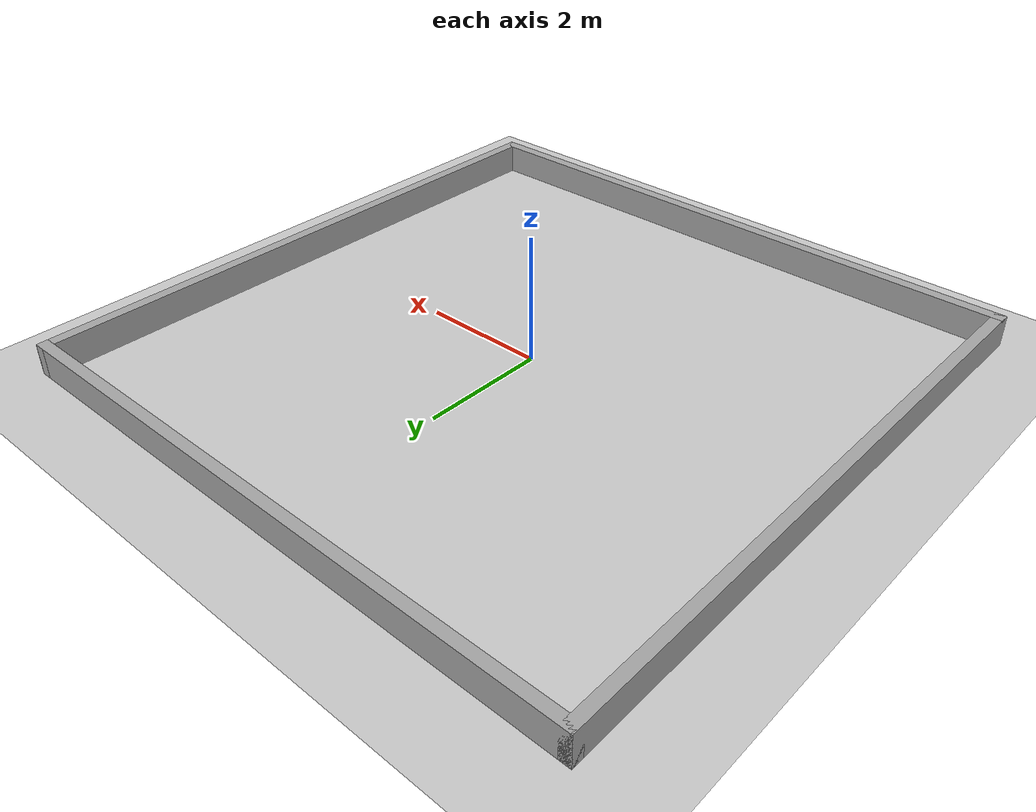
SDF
<?xml version='1.0'?>
<sdf version='1.7'>
  <world name='open_area'>
    <physics name='1ms' type='ignored'>
      <max_step_size>0.001</max_step_size>
      <real_time_factor>1.0</real_time_factor>
    </physics>
    <plugin filename='gz-sim-physics-system' name='gz::sim::systems::Physics'/>
    <plugin filename='gz-sim-user-commands-system' name='gz::sim::systems::UserCommands'/>
    <plugin filename='gz-sim-scene-broadcaster-system' name='gz::sim::systems::SceneBroadcaster'/>
    <light type='directional' name='sun'>
      <cast_shadows>true</cast_shadows>
      <pose>0 0 10 0 0 0</pose>
      <diffuse>0.8 0.8 0.8 1</diffuse>
      <specular>0.2 0.2 0.2 1</specular>
      <direction>-0.5 0.1 -0.9</direction>
    </light>
    <model name='ground_plane'>
      <static>true</static>
      <link name='link'>
        <collision name='collision'><geometry><plane><normal>0 0 1</normal><size>30 30</size></plane></geometry></collision>
        <visual name='visual'><geometry><plane><normal>0 0 1</normal><size>30 30</size></plane></geometry><material><ambient>0.8 0.8 0.8 1</ambient><diffuse>0.8 0.8 0.8 1</diffuse></material></visual>
      </link>
    </model>

    <model name='wall_0'>
      <static>true</static>
      <pose>0.000 -4.910 0.250 0 0 0</pose>
      <link name='link'>
        <collision name='collision'>
          <geometry><box><size>10.000 0.180 0.500</size></box></geometry>
        </collision>
        <visual name='visual'>
          <geometry><box><size>10.000 0.180 0.500</size></box></geometry>
          <material><ambient>0.65 0.65 0.65 1</ambient><diffuse>0.65 0.65 0.65 1</diffuse></material>
        </visual>
      </link>
    </model>

    <model name='wall_1'>
      <static>true</static>
      <pose>0.000 4.910 0.250 0 0 0</pose>
      <link name='link'>
        <collision name='collision'>
          <geometry><box><size>10.000 0.180 0.500</size></box></geometry>
        </collision>
        <visual name='visual'>
          <geometry><box><size>10.000 0.180 0.500</size></box></geometry>
          <material><ambient>0.65 0.65 0.65 1</ambient><diffuse>0.65 0.65 0.65 1</diffuse></material>
        </visual>
      </link>
    </model>

    <model name='wall_2'>
      <static>true</static>
      <pose>-4.910 0.000 0.250 0 0 0</pose>
      <link name='link'>
        <collision name='collision'>
          <geometry><box><size>0.180 10.000 0.500</size></box></geometry>
        </collision>
        <visual name='visual'>
          <geometry><box><size>0.180 10.000 0.500</size></box></geometry>
          <material><ambient>0.65 0.65 0.65 1</ambient><diffuse>0.65 0.65 0.65 1</diffuse></material>
        </visual>
      </link>
    </model>

    <model name='wall_3'>
      <static>true</static>
      <pose>4.910 0.000 0.250 0 0 0</pose>
      <link name='link'>
        <collision name='collision'>
          <geometry><box><size>0.180 10.000 0.500</size></box></geometry>
        </collision>
        <visual name='visual'>
          <geometry><box><size>0.180 10.000 0.500</size></box></geometry>
          <material><ambient>0.65 0.65 0.65 1</ambient><diffuse>0.65 0.65 0.65 1</diffuse></material>
        </visual>
      </link>
    </model>
  </world>
</sdf>
